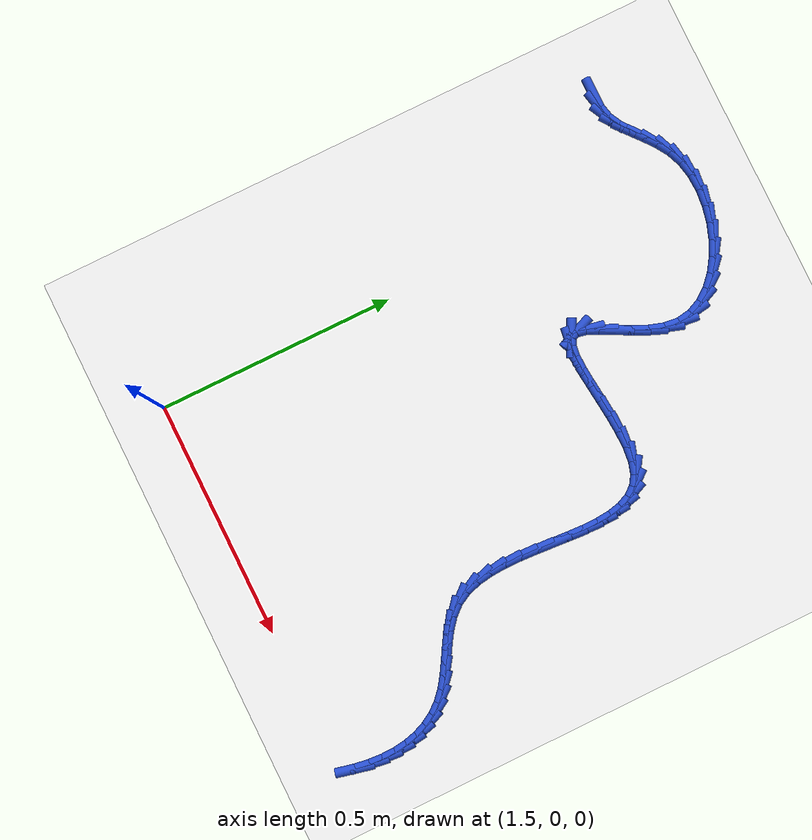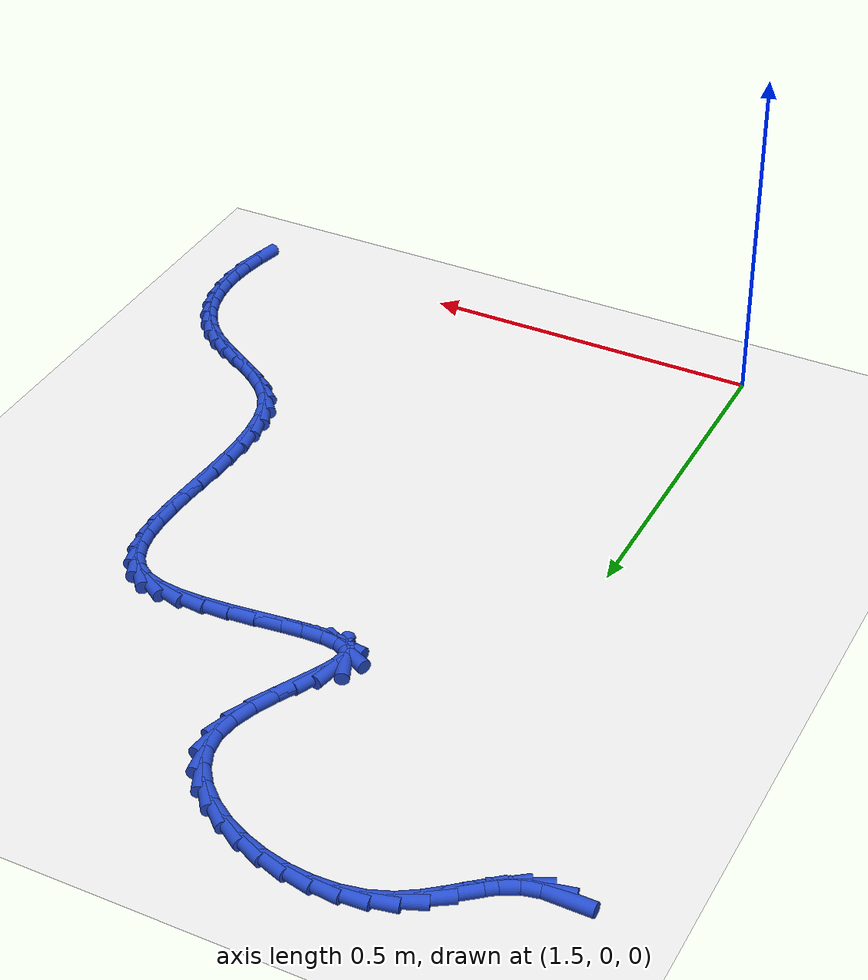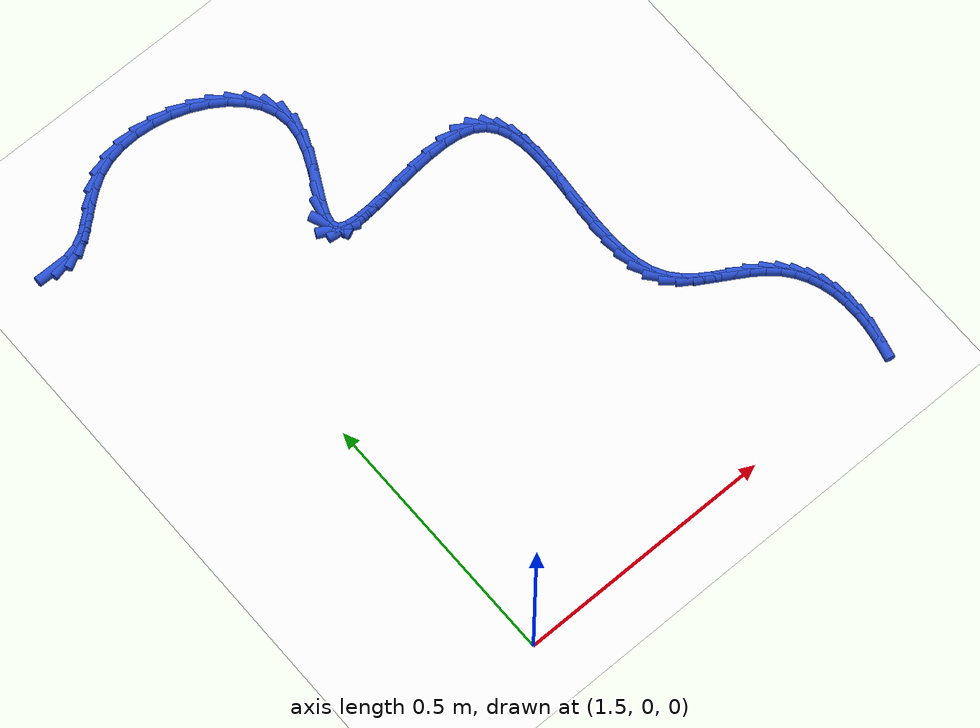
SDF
<sdf version="1.6">
 <world name="default">
  <model name="ground_plane">
   <static>1</static>
   <link name="link">
    <collision name="collision">
     <geometry><plane><normal>0 0 1</normal><size>100 100</size></plane></geometry>
     <surface><friction><ode><mu>100</mu><mu2>50</mu2></ode></friction></surface>
    </collision>
    <visual name="visual">
     <cast_shadows>0</cast_shadows>
     <geometry><plane><normal>0 0 1</normal><size>100 100</size></plane></geometry>
     <material>
      <script><uri>file://media/materials/scripts/gazebo.material</uri><name>Gazebo/WhiteGlow</name></script>
     </material>
    </visual>
   </link>
  </model>
  <model name="line">
   <link name="link_69">
    <pose>1.311996110319894 1.0533944317138668 0.01 0 1.57 -0.006887811893826387</pose>
    <collision name="collision">
     <geometry><cylinder><radius>0.01</radius><length>0.08</length></cylinder></geometry>
    </collision>
    <visual name="visual">
     <material>
      <script><name>Gazebo/Blue</name><uri>file://media/materials/scripts/gazebo.material</uri></script>
     </material>
     <geometry><cylinder><radius>0.01</radius><length>0.08</length></cylinder></geometry>
    </visual>
   </link>
   <link name="link_70">
    <pose>1.3381236803424452 1.0532144670803418 0.01 0 1.57 0.221986582166014</pose>
    <collision name="collision">
     <geometry><cylinder><radius>0.01</radius><length>0.08</length></cylinder></geometry>
    </collision>
    <visual name="visual">
     <material>
      <script><name>Gazebo/Blue</name><uri>file://media/materials/scripts/gazebo.material</uri></script>
     </material>
     <geometry><cylinder><radius>0.01</radius><length>0.08</length></cylinder></geometry>
    </visual>
   </link>
   <link name="link_71">
    <pose>1.3627459966013633 1.0587718783358047 0.01 0 1.57 0.4767244293590427</pose>
    <collision name="collision">
     <geometry><cylinder><radius>0.01</radius><length>0.08</length></cylinder></geometry>
    </collision>
    <visual name="visual">
     <material>
      <script><name>Gazebo/Blue</name><uri>file://media/materials/scripts/gazebo.material</uri></script>
     </material>
     <geometry><cylinder><radius>0.01</radius><length>0.08</length></cylinder></geometry>
    </visual>
   </link>
   <link name="link_72">
    <pose>1.3857884883967169 1.070672278066453 0.01 0 1.57 0.6399977336407191</pose>
    <collision name="collision">
     <geometry><cylinder><radius>0.01</radius><length>0.08</length></cylinder></geometry>
    </collision>
    <visual name="visual">
     <material>
      <script><name>Gazebo/Blue</name><uri>file://media/materials/scripts/gazebo.material</uri></script>
     </material>
     <geometry><cylinder><radius>0.01</radius><length>0.08</length></cylinder></geometry>
    </visual>
   </link>
   <link name="link_73">
    <pose>1.4080328051476627 1.0872340683228545 0.01 0 1.57 0.6985402042022182</pose>
    <collision name="collision">
     <geometry><cylinder><radius>0.01</radius><length>0.08</length></cylinder></geometry>
    </collision>
    <visual name="visual">
     <material>
      <script><name>Gazebo/Blue</name><uri>file://media/materials/scripts/gazebo.material</uri></script>
     </material>
     <geometry><cylinder><radius>0.01</radius><length>0.08</length></cylinder></geometry>
    </visual>
   </link>
   <link name="link_74">
    <pose>1.4305097423634245 1.1061101101931508 0.01 0 1.57 0.6708964162193518</pose>
    <collision name="collision">
     <geometry><cylinder><radius>0.01</radius><length>0.08</length></cylinder></geometry>
    </collision>
    <visual name="visual">
     <material>
      <script><name>Gazebo/Blue</name><uri>file://media/materials/scripts/gazebo.material</uri></script>
     </material>
     <geometry><cylinder><radius>0.01</radius><length>0.08</length></cylinder></geometry>
    </visual>
   </link>
   <link name="link_75">
    <pose>1.4542501236224572 1.1249531897844829 0.01 0 1.57 0.563864327290396</pose>
    <collision name="collision">
     <geometry><cylinder><radius>0.01</radius><length>0.08</length></cylinder></geometry>
    </collision>
    <visual name="visual">
     <material>
      <script><name>Gazebo/Blue</name><uri>file://media/materials/scripts/gazebo.material</uri></script>
     </material>
     <geometry><cylinder><radius>0.01</radius><length>0.08</length></cylinder></geometry>
    </visual>
   </link>
   <link name="link_76">
    <pose>1.4802847725032149 1.1414160932039907 0.01 0 1.57 0.38503338932570086</pose>
    <collision name="collision">
     <geometry><cylinder><radius>0.01</radius><length>0.08</length></cylinder></geometry>
    </collision>
    <visual name="visual">
     <material>
      <script><name>Gazebo/Blue</name><uri>file://media/materials/scripts/gazebo.material</uri></script>
     </material>
     <geometry><cylinder><radius>0.01</radius><length>0.08</length></cylinder></geometry>
    </visual>
   </link>
   <link name="link_77">
    <pose>1.5095480952430602 1.1532753736139638 0.01 0 1.57 0.2002234331399412</pose>
    <collision name="collision">
     <geometry><cylinder><radius>0.01</radius><length>0.08</length></cylinder></geometry>
    </collision>
    <visual name="visual">
     <material>
      <script><name>Gazebo/Blue</name><uri>file://media/materials/scripts/gazebo.material</uri></script>
     </material>
     <geometry><cylinder><radius>0.01</radius><length>0.08</length></cylinder></geometry>
    </visual>
   </link>
   <link name="link_78">
    <pose>1.541796353471404 1.1598199209307942 0.01 0 1.57 0.04472005962416173</pose>
    <collision name="collision">
     <geometry><cylinder><radius>0.01</radius><length>0.08</length></cylinder></geometry>
    </collision>
    <visual name="visual">
     <material>
      <script><name>Gazebo/Blue</name><uri>file://media/materials/scripts/gazebo.material</uri></script>
     </material>
     <geometry><cylinder><radius>0.01</radius><length>0.08</length></cylinder></geometry>
    </visual>
   </link>
   <link name="link_79">
    <pose>1.5759975953621537 1.1613504229187666 0.01 0 1.57 -0.08988787772329254</pose>
    <collision name="collision">
     <geometry><cylinder><radius>0.01</radius><length>0.08</length></cylinder></geometry>
    </collision>
    <visual name="visual">
     <material>
      <script><name>Gazebo/Blue</name><uri>file://media/materials/scripts/gazebo.material</uri></script>
     </material>
     <geometry><cylinder><radius>0.01</radius><length>0.08</length></cylinder></geometry>
    </visual>
   </link>
   <link name="link_80">
    <pose>1.6111054090250545 1.1581861291437923 0.01 0 1.57 -0.21236993503669752</pose>
    <collision name="collision">
     <geometry><cylinder><radius>0.01</radius><length>0.08</length></cylinder></geometry>
    </collision>
    <visual name="visual">
     <material>
      <script><name>Gazebo/Blue</name><uri>file://media/materials/scripts/gazebo.material</uri></script>
     </material>
     <geometry><cylinder><radius>0.01</radius><length>0.08</length></cylinder></geometry>
    </visual>
   </link>
   <link name="link_81">
    <pose>1.6460733825698528 1.150646289171782 0.01 0 1.57 -0.3306636942626501</pose>
    <collision name="collision">
     <geometry><cylinder><radius>0.01</radius><length>0.08</length></cylinder></geometry>
    </collision>
    <visual name="visual">
     <material>
      <script><name>Gazebo/Blue</name><uri>file://media/materials/scripts/gazebo.material</uri></script>
     </material>
     <geometry><cylinder><radius>0.01</radius><length>0.08</length></cylinder></geometry>
    </visual>
   </link>
   <link name="link_82">
    <pose>1.679855104106293 1.1390501525686467 0.01 0 1.57 -0.45239377221883426</pose>
    <collision name="collision">
     <geometry><cylinder><radius>0.01</radius><length>0.08</length></cylinder></geometry>
    </collision>
    <visual name="visual">
     <material>
      <script><name>Gazebo/Blue</name><uri>file://media/materials/scripts/gazebo.material</uri></script>
     </material>
     <geometry><cylinder><radius>0.01</radius><length>0.08</length></cylinder></geometry>
    </visual>
   </link>
   <link name="link_83">
    <pose>1.7114041617441207 1.123716968900298 0.01 0 1.57 -0.5856559827393523</pose>
    <collision name="collision">
     <geometry><cylinder><radius>0.01</radius><length>0.08</length></cylinder></geometry>
    </collision>
    <visual name="visual">
     <material>
      <script><name>Gazebo/Blue</name><uri>file://media/materials/scripts/gazebo.material</uri></script>
     </material>
     <geometry><cylinder><radius>0.01</radius><length>0.08</length></cylinder></geometry>
    </visual>
   </link>
   <link name="link_84">
    <pose>1.739674143593081 1.1049659877326468 0.01 0 1.57 -0.7396824722148133</pose>
    <collision name="collision">
     <geometry><cylinder><radius>0.01</radius><length>0.08</length></cylinder></geometry>
    </collision>
    <visual name="visual">
     <material>
      <script><name>Gazebo/Blue</name><uri>file://media/materials/scripts/gazebo.material</uri></script>
     </material>
     <geometry><cylinder><radius>0.01</radius><length>0.08</length></cylinder></geometry>
    </visual>
   </link>
   <link name="link_85">
    <pose>1.7636186377629195 1.0831164586316042 0.01 0 1.57 -0.9246764864221432</pose>
    <collision name="collision">
     <geometry><cylinder><radius>0.01</radius><length>0.08</length></cylinder></geometry>
    </collision>
    <visual name="visual">
     <material>
      <script><name>Gazebo/Blue</name><uri>file://media/materials/scripts/gazebo.material</uri></script>
     </material>
     <geometry><cylinder><radius>0.01</radius><length>0.08</length></cylinder></geometry>
    </visual>
   </link>
   <link name="link_86">
    <pose>1.7821912323633817 1.0584876311630815 0.01 0 1.57 -1.1490392380997279</pose>
    <collision name="collision">
     <geometry><cylinder><radius>0.01</radius><length>0.08</length></cylinder></geometry>
    </collision>
    <visual name="visual">
     <material>
      <script><name>Gazebo/Blue</name><uri>file://media/materials/scripts/gazebo.material</uri></script>
     </material>
     <geometry><cylinder><radius>0.01</radius><length>0.08</length></cylinder></geometry>
    </visual>
   </link>
   <link name="link_87">
    <pose>1.794345515504212 1.0313987548929893 0.01 0 1.57 -1.411713722811393</pose>
    <collision name="collision">
     <geometry><cylinder><radius>0.01</radius><length>0.08</length></cylinder></geometry>
    </collision>
    <visual name="visual">
     <material>
      <script><name>Gazebo/Blue</name><uri>file://media/materials/scripts/gazebo.material</uri></script>
     </material>
     <geometry><cylinder><radius>0.01</radius><length>0.08</length></cylinder></geometry>
    </visual>
   </link>
   <link name="link_88">
    <pose>1.7990350752951567 1.002169079387239 0.01 0 1.57 1.4566985335978342</pose>
    <collision name="collision">
     <geometry><cylinder><radius>0.01</radius><length>0.08</length></cylinder></geometry>
    </collision>
    <visual name="visual">
     <material>
      <script><name>Gazebo/Blue</name><uri>file://media/materials/scripts/gazebo.material</uri></script>
     </material>
     <geometry><cylinder><radius>0.01</radius><length>0.08</length></cylinder></geometry>
    </visual>
   </link>
   <link name="link_89">
    <pose>1.7954836427338658 0.9711780509195985 0.01 0 1.57 1.2588574871957552</pose>
    <collision name="collision">
     <geometry><cylinder><radius>0.01</radius><length>0.08</length></cylinder></geometry>
    </collision>
    <visual name="visual">
     <material>
      <script><name>Gazebo/Blue</name><uri>file://media/materials/scripts/gazebo.material</uri></script>
     </material>
     <geometry><cylinder><radius>0.01</radius><length>0.08</length></cylinder></geometry>
    </visual>
   </link>
   <link name="link_90">
    <pose>1.7852093161799092 0.9393163761670651 0.01 0 1.57 1.14508115397403</pose>
    <collision name="collision">
     <geometry><cylinder><radius>0.01</radius><length>0.08</length></cylinder></geometry>
    </collision>
    <visual name="visual">
     <material>
      <script><name>Gazebo/Blue</name><uri>file://media/materials/scripts/gazebo.material</uri></script>
     </material>
     <geometry><cylinder><radius>0.01</radius><length>0.08</length></cylinder></geometry>
    </visual>
   </link>
   <link name="link_91">
    <pose>1.7708878664230823 0.9077327292460762 0.01 0 1.57 1.0911899260026547</pose>
    <collision name="collision">
     <geometry><cylinder><radius>0.01</radius><length>0.08</length></cylinder></geometry>
    </collision>
    <visual name="visual">
     <material>
      <script><name>Gazebo/Blue</name><uri>file://media/materials/scripts/gazebo.material</uri></script>
     </material>
     <geometry><cylinder><radius>0.01</radius><length>0.08</length></cylinder></geometry>
    </visual>
   </link>
   <link name="link_92">
    <pose>1.7552039471330532 0.8775777636704477 0.01 0 1.57 1.0906376286649389</pose>
    <collision name="collision">
     <geometry><cylinder><radius>0.01</radius><length>0.08</length></cylinder></geometry>
    </collision>
    <visual name="visual">
     <material>
      <script><name>Gazebo/Blue</name><uri>file://media/materials/scripts/gazebo.material</uri></script>
     </material>
     <geometry><cylinder><radius>0.01</radius><length>0.08</length></cylinder></geometry>
    </visual>
   </link>
   <link name="link_93">
    <pose>1.7408422119794915 0.8500021329539975 0.01 0 1.57 1.1611195767262987</pose>
    <collision name="collision">
     <geometry><cylinder><radius>0.01</radius><length>0.08</length></cylinder></geometry>
    </collision>
    <visual name="visual">
     <material>
      <script><name>Gazebo/Blue</name><uri>file://media/materials/scripts/gazebo.material</uri></script>
     </material>
     <geometry><cylinder><radius>0.01</radius><length>0.08</length></cylinder></geometry>
    </visual>
   </link>
   <link name="link_94">
    <pose>1.7304873146320674 0.8261564906105433 0.01 0 1.57 1.3799798330676916</pose>
    <collision name="collision">
     <geometry><cylinder><radius>0.01</radius><length>0.08</length></cylinder></geometry>
    </collision>
    <visual name="visual">
     <material>
      <script><name>Gazebo/Blue</name><uri>file://media/materials/scripts/gazebo.material</uri></script>
     </material>
     <geometry><cylinder><radius>0.01</radius><length>0.08</length></cylinder></geometry>
    </visual>
   </link>
   <link name="link_95">
    <pose>1.7268239087604482 0.8071914901539018 0.01 0 1.57 -1.170083122966629</pose>
    <collision name="collision">
     <geometry><cylinder><radius>0.01</radius><length>0.08</length></cylinder></geometry>
    </collision>
    <visual name="visual">
     <material>
      <script><name>Gazebo/Blue</name><uri>file://media/materials/scripts/gazebo.material</uri></script>
     </material>
     <geometry><cylinder><radius>0.01</radius><length>0.08</length></cylinder></geometry>
    </visual>
   </link>
   <link name="link_96">
    <pose>1.7323463594302084 0.7941555947189765 0.01 0 1.57 -0.4612925023381604</pose>
    <collision name="collision">
     <geometry><cylinder><radius>0.01</radius><length>0.08</length></cylinder></geometry>
    </collision>
    <visual name="visual">
     <material>
      <script><name>Gazebo/Blue</name><uri>file://media/materials/scripts/gazebo.material</uri></script>
     </material>
     <geometry><cylinder><radius>0.01</radius><length>0.08</length></cylinder></geometry>
    </visual>
   </link>
   <link name="link_97">
    <pose>1.7471387670040397 0.7868028869156798 0.01 0 1.57 -0.12402723647031781</pose>
    <collision name="collision">
     <geometry><cylinder><radius>0.01</radius><length>0.08</length></cylinder></geometry>
    </collision>
    <visual name="visual">
     <material>
      <script><name>Gazebo/Blue</name><uri>file://media/materials/scripts/gazebo.material</uri></script>
     </material>
     <geometry><cylinder><radius>0.01</radius><length>0.08</length></cylinder></geometry>
    </visual>
   </link>
   <link name="link_98">
    <pose>1.7696306444903194 0.7839988890037837 0.01 0 1.57 0.020733580984979218</pose>
    <collision name="collision">
     <geometry><cylinder><radius>0.01</radius><length>0.08</length></cylinder></geometry>
    </collision>
    <visual name="visual">
     <material>
      <script><name>Gazebo/Blue</name><uri>file://media/materials/scripts/gazebo.material</uri></script>
     </material>
     <geometry><cylinder><radius>0.01</radius><length>0.08</length></cylinder></geometry>
    </visual>
   </link>
   <link name="link_99">
    <pose>1.7982190886076812 0.7845917147758139 0.01 0 1.57 0.08556993028013905</pose>
    <collision name="collision">
     <geometry><cylinder><radius>0.01</radius><length>0.08</length></cylinder></geometry>
    </collision>
    <visual name="visual">
     <material>
      <script><name>Gazebo/Blue</name><uri>file://media/materials/scripts/gazebo.material</uri></script>
     </material>
     <geometry><cylinder><radius>0.01</radius><length>0.08</length></cylinder></geometry>
    </visual>
   </link>
   <link name="link_100">
    <pose>1.8313011960747587 0.7874294780242956 0.01 0 1.57 0.10883982558300209</pose>
    <collision name="collision">
     <geometry><cylinder><radius>0.01</radius><length>0.08</length></cylinder></geometry>
    </collision>
    <visual name="visual">
     <material>
      <script><name>Gazebo/Blue</name><uri>file://media/materials/scripts/gazebo.material</uri></script>
     </material>
     <geometry><cylinder><radius>0.01</radius><length>0.08</length></cylinder></geometry>
    </visual>
   </link>
   <link name="link_101">
    <pose>1.8672740636101854 0.7913602925417541 0.01 0 1.57 0.10354420278395013</pose>
    <collision name="collision">
     <geometry><cylinder><radius>0.01</radius><length>0.08</length></cylinder></geometry>
    </collision>
    <visual name="visual">
     <material>
      <script><name>Gazebo/Blue</name><uri>file://media/materials/scripts/gazebo.material</uri></script>
     </material>
     <geometry><cylinder><radius>0.01</radius><length>0.08</length></cylinder></geometry>
    </visual>
   </link>
   <link name="link_102">
    <pose>1.9045347879325953 0.7952322721207152 0.01 0 1.57 0.07190746429975936</pose>
    <collision name="collision">
     <geometry><cylinder><radius>0.01</radius><length>0.08</length></cylinder></geometry>
    </collision>
    <visual name="visual">
     <material>
      <script><name>Gazebo/Blue</name><uri>file://media/materials/scripts/gazebo.material</uri></script>
     </material>
     <geometry><cylinder><radius>0.01</radius><length>0.08</length></cylinder></geometry>
    </visual>
   </link>
   <link name="link_103">
    <pose>1.9414804657606233 0.7978935305537044 0.01 0 1.57 0.008525926734498037</pose>
    <collision name="collision">
     <geometry><cylinder><radius>0.01</radius><length>0.08</length></cylinder></geometry>
    </collision>
    <visual name="visual">
     <material>
      <script><name>Gazebo/Blue</name><uri>file://media/materials/scripts/gazebo.material</uri></script>
     </material>
     <geometry><cylinder><radius>0.01</radius><length>0.08</length></cylinder></geometry>
    </visual>
   </link>
   <link name="link_104">
    <pose>1.976508193812903 0.7981921816332468 0.01 0 1.57 -0.10171571642077179</pose>
    <collision name="collision">
     <geometry><cylinder><radius>0.01</radius><length>0.08</length></cylinder></geometry>
    </collision>
    <visual name="visual">
     <material>
      <script><name>Gazebo/Blue</name><uri>file://media/materials/scripts/gazebo.material</uri></script>
     </material>
     <geometry><cylinder><radius>0.01</radius><length>0.08</length></cylinder></geometry>
    </visual>
   </link>
   <link name="link_105">
    <pose>2.0080150688080676 0.7949763391518683 0.01 0 1.57 -0.29027970034155276</pose>
    <collision name="collision">
     <geometry><cylinder><radius>0.01</radius><length>0.08</length></cylinder></geometry>
    </collision>
    <visual name="visual">
     <material>
      <script><name>Gazebo/Blue</name><uri>file://media/materials/scripts/gazebo.material</uri></script>
     </material>
     <geometry><cylinder><radius>0.01</radius><length>0.08</length></cylinder></geometry>
    </visual>
   </link>
   <link name="link_106">
    <pose>2.034399263821335 0.7870949204962641 0.01 0 1.57 -0.579933701573318</pose>
    <collision name="collision">
     <geometry><cylinder><radius>0.01</radius><length>0.08</length></cylinder></geometry>
    </collision>
    <visual name="visual">
     <material>
      <script><name>Gazebo/Blue</name><uri>file://media/materials/scripts/gazebo.material</uri></script>
     </material>
     <geometry><cylinder><radius>0.01</radius><length>0.08</length></cylinder></geometry>
    </visual>
   </link>
   <link name="link_107">
    <pose>2.0546436388704876 0.7738333629068502 0.01 0 1.57 -0.8934385803165187</pose>
    <collision name="collision">
     <geometry><cylinder><radius>0.01</radius><length>0.08</length></cylinder></geometry>
    </collision>
    <visual name="visual">
     <material>
      <script><name>Gazebo/Blue</name><uri>file://media/materials/scripts/gazebo.material</uri></script>
     </material>
     <geometry><cylinder><radius>0.01</radius><length>0.08</length></cylinder></geometry>
    </visual>
   </link>
   <link name="link_108">
    <pose>2.0692811104383866 0.7556343561161681 0.01 0 1.57 -1.1594349704948625</pose>
    <collision name="collision">
     <geometry><cylinder><radius>0.01</radius><length>0.08</length></cylinder></geometry>
    </collision>
    <visual name="visual">
     <material>
      <script><name>Gazebo/Blue</name><uri>file://media/materials/scripts/gazebo.material</uri></script>
     </material>
     <geometry><cylinder><radius>0.01</radius><length>0.08</length></cylinder></geometry>
    </visual>
   </link>
   <link name="link_109">
    <pose>2.079098564027237 0.7331301999046352 0.01 0 1.57 -1.3533214233705797</pose>
    <collision name="collision">
     <geometry><cylinder><radius>0.01</radius><length>0.08</length></cylinder></geometry>
    </collision>
    <visual name="visual">
     <material>
      <script><name>Gazebo/Blue</name><uri>file://media/materials/scripts/gazebo.material</uri></script>
     </material>
     <geometry><cylinder><radius>0.01</radius><length>0.08</length></cylinder></geometry>
    </visual>
   </link>
   <link name="link_110">
    <pose>2.084882885139243 0.7069531940526691 0.01 0 1.57 -1.4841457270428473</pose>
    <collision name="collision">
     <geometry><cylinder><radius>0.01</radius><length>0.08</length></cylinder></geometry>
    </collision>
    <visual name="visual">
     <material>
      <script><name>Gazebo/Blue</name><uri>file://media/materials/scripts/gazebo.material</uri></script>
     </material>
     <geometry><cylinder><radius>0.01</radius><length>0.08</length></cylinder></geometry>
    </visual>
   </link>
   <link name="link_111">
    <pose>2.087420959276607 0.677735638340687 0.01 0 1.57 -1.5683074573280378</pose>
    <collision name="collision">
     <geometry><cylinder><radius>0.01</radius><length>0.08</length></cylinder></geometry>
    </collision>
    <visual name="visual">
     <material>
      <script><name>Gazebo/Blue</name><uri>file://media/materials/scripts/gazebo.material</uri></script>
     </material>
     <geometry><cylinder><radius>0.01</radius><length>0.08</length></cylinder></geometry>
    </visual>
   </link>
   <link name="link_112">
    <pose>2.087499671941534 0.6461098325491065 0.01 0 1.57 1.52311753306498</pose>
    <collision name="collision">
     <geometry><cylinder><radius>0.01</radius><length>0.08</length></cylinder></geometry>
    </collision>
    <visual name="visual">
     <material>
      <script><name>Gazebo/Blue</name><uri>file://media/materials/scripts/gazebo.material</uri></script>
     </material>
     <geometry><cylinder><radius>0.01</radius><length>0.08</length></cylinder></geometry>
    </visual>
   </link>
   <link name="link_113">
    <pose>2.085905908636227 0.6127080764583454 0.01 0 1.57 1.4991483125613834</pose>
    <collision name="collision">
     <geometry><cylinder><radius>0.01</radius><length>0.08</length></cylinder></geometry>
    </collision>
    <visual name="visual">
     <material>
      <script><name>Gazebo/Blue</name><uri>file://media/materials/scripts/gazebo.material</uri></script>
     </material>
     <geometry><cylinder><radius>0.01</radius><length>0.08</length></cylinder></geometry>
    </visual>
   </link>
   <link name="link_114">
    <pose>2.08342655486289 0.5781626698488201 0.01 0 1.57 1.4973889007468748</pose>
    <collision name="collision">
     <geometry><cylinder><radius>0.01</radius><length>0.08</length></cylinder></geometry>
    </collision>
    <visual name="visual">
     <material>
      <script><name>Gazebo/Blue</name><uri>file://media/materials/scripts/gazebo.material</uri></script>
     </material>
     <geometry><cylinder><radius>0.01</radius><length>0.08</length></cylinder></geometry>
    </visual>
   </link>
   <link name="link_115">
    <pose>2.0808484961237257 0.5431059125009489 0.01 0 1.57 1.5167532677197528</pose>
    <collision name="collision">
     <geometry><cylinder><radius>0.01</radius><length>0.08</length></cylinder></geometry>
    </collision>
    <visual name="visual">
     <material>
      <script><name>Gazebo/Blue</name><uri>file://media/materials/scripts/gazebo.material</uri></script>
     </material>
     <geometry><cylinder><radius>0.01</radius><length>0.08</length></cylinder></geometry>
    </visual>
   </link>
   <link name="link_116">
    <pose>2.0789586179209403 0.5081701041951489 0.01 0 1.57 1.5586617233566338</pose>
    <collision name="collision">
     <geometry><cylinder><radius>0.01</radius><length>0.08</length></cylinder></geometry>
    </collision>
    <visual name="visual">
     <material>
      <script><name>Gazebo/Blue</name><uri>file://media/materials/scripts/gazebo.material</uri></script>
     </material>
     <geometry><cylinder><radius>0.01</radius><length>0.08</length></cylinder></geometry>
    </visual>
   </link>
   <link name="link_117">
    <pose>2.0785438057567354 0.4739875447118376 0.01 0 1.57 -1.5145354053183486</pose>
    <collision name="collision">
     <geometry><cylinder><radius>0.01</radius><length>0.08</length></cylinder></geometry>
    </collision>
    <visual name="visual">
     <material>
      <script><name>Gazebo/Blue</name><uri>file://media/materials/scripts/gazebo.material</uri></script>
     </material>
     <geometry><cylinder><radius>0.01</radius><length>0.08</length></cylinder></geometry>
    </visual>
   </link>
   <link name="link_118">
    <pose>2.080390945133316 0.4411905338314326 0.01 0 1.57 -1.4130500406098458</pose>
    <collision name="collision">
     <geometry><cylinder><radius>0.01</radius><length>0.08</length></cylinder></geometry>
    </collision>
    <visual name="visual">
     <material>
      <script><name>Gazebo/Blue</name><uri>file://media/materials/scripts/gazebo.material</uri></script>
     </material>
     <geometry><cylinder><radius>0.01</radius><length>0.08</length></cylinder></geometry>
    </visual>
   </link>
   <link name="link_119">
    <pose>2.085286921552885 0.4104113713343512 0.01 0 1.57 -1.2698110815413408</pose>
    <collision name="collision">
     <geometry><cylinder><radius>0.01</radius><length>0.08</length></cylinder></geometry>
    </collision>
    <visual name="visual">
     <material>
      <script><name>Gazebo/Blue</name><uri>file://media/materials/scripts/gazebo.material</uri></script>
     </material>
     <geometry><cylinder><radius>0.01</radius><length>0.08</length></cylinder></geometry>
    </visual>
   </link>
   <link name="link_120">
    <pose>2.0940186205176463 0.3822823570010108 0.01 0 1.57 -1.0776232283047276</pose>
    <collision name="collision">
     <geometry><cylinder><radius>0.01</radius><length>0.08</length></cylinder></geometry>
    </collision>
    <visual name="visual">
     <material>
      <script><name>Gazebo/Blue</name><uri>file://media/materials/scripts/gazebo.material</uri></script>
     </material>
     <geometry><cylinder><radius>0.01</radius><length>0.08</length></cylinder></geometry>
    </visual>
   </link>
   <link name="link_121">
    <pose>2.1073729275298048 0.357435790611829 0.01 0 1.57 -0.8561940201752224</pose>
    <collision name="collision">
     <geometry><cylinder><radius>0.01</radius><length>0.08</length></cylinder></geometry>
    </collision>
    <visual name="visual">
     <material>
      <script><name>Gazebo/Blue</name><uri>file://media/materials/scripts/gazebo.material</uri></script>
     </material>
     <geometry><cylinder><radius>0.01</radius><length>0.08</length></cylinder></geometry>
    </visual>
   </link>
   <link name="link_122">
    <pose>2.1257638620629593 0.3362374042527913 0.01 0 1.57 -0.685224386749124</pose>
    <collision name="collision">
     <geometry><cylinder><radius>0.01</radius><length>0.08</length></cylinder></geometry>
    </collision>
    <visual name="visual">
     <material>
      <script><name>Gazebo/Blue</name><uri>file://media/materials/scripts/gazebo.material</uri></script>
     </material>
     <geometry><cylinder><radius>0.01</radius><length>0.08</length></cylinder></geometry>
    </visual>
   </link>
   <link name="link_123">
    <pose>2.1481029660366793 0.31797878555372766 0.01 0 1.57 -0.5810204704150626</pose>
    <collision name="collision">
     <geometry><cylinder><radius>0.01</radius><length>0.08</length></cylinder></geometry>
    </collision>
    <visual name="visual">
     <material>
      <script><name>Gazebo/Blue</name><uri>file://media/materials/scripts/gazebo.material</uri></script>
     </material>
     <geometry><cylinder><radius>0.01</radius><length>0.08</length></cylinder></geometry>
    </visual>
   </link>
   <link name="link_124">
    <pose>2.1729233883209744 0.3016810030972137 0.01 0 1.57 -0.5351359198673367</pose>
    <collision name="collision">
     <geometry><cylinder><radius>0.01</radius><length>0.08</length></cylinder></geometry>
    </collision>
    <visual name="visual">
     <material>
      <script><name>Gazebo/Blue</name><uri>file://media/materials/scripts/gazebo.material</uri></script>
     </material>
     <geometry><cylinder><radius>0.01</radius><length>0.08</length></cylinder></geometry>
    </visual>
   </link>
   <link name="link_125">
    <pose>2.1987582777803096 0.2863651254618646 0.01 0 1.57 -0.5428320017476964</pose>
    <collision name="collision">
     <geometry><cylinder><radius>0.01</radius><length>0.08</length></cylinder></geometry>
    </collision>
    <visual name="visual">
     <material>
      <script><name>Gazebo/Blue</name><uri>file://media/materials/scripts/gazebo.material</uri></script>
     </material>
     <geometry><cylinder><radius>0.01</radius><length>0.08</length></cylinder></geometry>
    </visual>
   </link>
   <link name="link_126">
    <pose>2.224140783279152 0.2710522212262957 0.01 0 1.57 -0.6068417107639232</pose>
    <collision name="collision">
     <geometry><cylinder><radius>0.01</radius><length>0.08</length></cylinder></geometry>
    </collision>
    <visual name="visual">
     <material>
      <script><name>Gazebo/Blue</name><uri>file://media/materials/scripts/gazebo.material</uri></script>
     </material>
     <geometry><cylinder><radius>0.01</radius><length>0.08</length></cylinder></geometry>
    </visual>
   </link>
   <link name="link_127">
    <pose>2.247604053681968 0.25476335896912194 0.01 0 1.57 -0.7325253591980465</pose>
    <collision name="collision">
     <geometry><cylinder><radius>0.01</radius><length>0.08</length></cylinder></geometry>
    </collision>
    <visual name="visual">
     <material>
      <script><name>Gazebo/Blue</name><uri>file://media/materials/scripts/gazebo.material</uri></script>
     </material>
     <geometry><cylinder><radius>0.01</radius><length>0.08</length></cylinder></geometry>
    </visual>
   </link>
   <link name="link_128">
    <pose>2.2677960976681213 0.23660110601733547 0.01 0 1.57 -0.8847459939959388</pose>
    <collision name="collision">
     <geometry><cylinder><radius>0.01</radius><length>0.08</length></cylinder></geometry>
    </collision>
    <visual name="visual">
     <material>
      <script><name>Gazebo/Blue</name><uri>file://media/materials/scripts/gazebo.material</uri></script>
     </material>
     <geometry><cylinder><radius>0.01</radius><length>0.08</length></cylinder></geometry>
    </visual>
   </link>
   <link name="link_129">
    <pose>2.2843576685400504 0.21637243135756667 0.01 0 1.57 -1.0369300032506195</pose>
    <collision name="collision">
     <geometry><cylinder><radius>0.01</radius><length>0.08</length></cylinder></geometry>
    </collision>
    <visual name="visual">
     <material>
      <script><name>Gazebo/Blue</name><uri>file://media/materials/scripts/gazebo.material</uri></script>
     </material>
     <geometry><cylinder><radius>0.01</radius><length>0.08</length></cylinder></geometry>
    </visual>
   </link>
   <link name="link_130">
    <pose>2.29743774169472 0.1942449128163495 0.01 0 1.57 -1.1827488836846674</pose>
    <collision name="collision">
     <geometry><cylinder><radius>0.01</radius><length>0.08</length></cylinder></geometry>
    </collision>
    <visual name="visual">
     <material>
      <script><name>Gazebo/Blue</name><uri>file://media/materials/scripts/gazebo.material</uri></script>
     </material>
     <geometry><cylinder><radius>0.01</radius><length>0.08</length></cylinder></geometry>
    </visual>
   </link>
   <link name="link_131">
    <pose>2.3071894058856057 0.1703890468511388 0.01 0 1.57 -1.3175793855934141</pose>
    <collision name="collision">
     <geometry><cylinder><radius>0.01</radius><length>0.08</length></cylinder></geometry>
    </collision>
    <visual name="visual">
     <material>
      <script><name>Gazebo/Blue</name><uri>file://media/materials/scripts/gazebo.material</uri></script>
     </material>
     <geometry><cylinder><radius>0.01</radius><length>0.08</length></cylinder></geometry>
    </visual>
   </link>
   <link name="link_132">
    <pose>2.313765749866183 0.14497532991938927 0.01 0 1.57 -1.4389547376109988</pose>
    <collision name="collision">
     <geometry><cylinder><radius>0.01</radius><length>0.08</length></cylinder></geometry>
    </collision>
    <visual name="visual">
     <material>
      <script><name>Gazebo/Blue</name><uri>file://media/materials/scripts/gazebo.material</uri></script>
     </material>
     <geometry><cylinder><radius>0.01</radius><length>0.08</length></cylinder></geometry>
    </visual>
   </link>
   <link name="link_133">
    <pose>2.3173198623899287 0.11817425847855571 0.01 0 1.57 -1.5463536425278943</pose>
    <collision name="collision">
     <geometry><cylinder><radius>0.01</radius><length>0.08</length></cylinder></geometry>
    </collision>
    <visual name="visual">
     <material>
      <script><name>Gazebo/Blue</name><uri>file://media/materials/scripts/gazebo.material</uri></script>
     </material>
     <geometry><cylinder><radius>0.01</radius><length>0.08</length></cylinder></geometry>
    </visual>
   </link>
   <link name="link_134">
    <pose>2.3180048322103173 0.09015632898609328 0.01 0 1.57 1.5010272940000644</pose>
    <collision name="collision">
     <geometry><cylinder><radius>0.01</radius><length>0.08</length></cylinder></geometry>
    </collision>
    <visual name="visual">
     <material>
      <script><name>Gazebo/Blue</name><uri>file://media/materials/scripts/gazebo.material</uri></script>
     </material>
     <geometry><cylinder><radius>0.01</radius><length>0.08</length></cylinder></geometry>
    </visual>
   </link>
   <link name="link_135">
    <pose>2.3159737480808253 0.06109203789945583 0.01 0 1.57 1.4185427493861769</pose>
    <collision name="collision">
     <geometry><cylinder><radius>0.01</radius><length>0.08</length></cylinder></geometry>
    </collision>
    <visual name="visual">
     <material>
      <script><name>Gazebo/Blue</name><uri>file://media/materials/scripts/gazebo.material</uri></script>
     </material>
     <geometry><cylinder><radius>0.01</radius><length>0.08</length></cylinder></geometry>
    </visual>
   </link>
   <link name="link_136">
    <pose>2.311379698754928 0.031151881676098128 0.01 0 1.57 1.346108901711538</pose>
    <collision name="collision">
     <geometry><cylinder><radius>0.01</radius><length>0.08</length></cylinder></geometry>
    </collision>
    <visual name="visual">
     <material>
      <script><name>Gazebo/Blue</name><uri>file://media/materials/scripts/gazebo.material</uri></script>
     </material>
     <geometry><cylinder><radius>0.01</radius><length>0.08</length></cylinder></geometry>
    </visual>
   </link>
  </model>
 </world>
</sdf>
